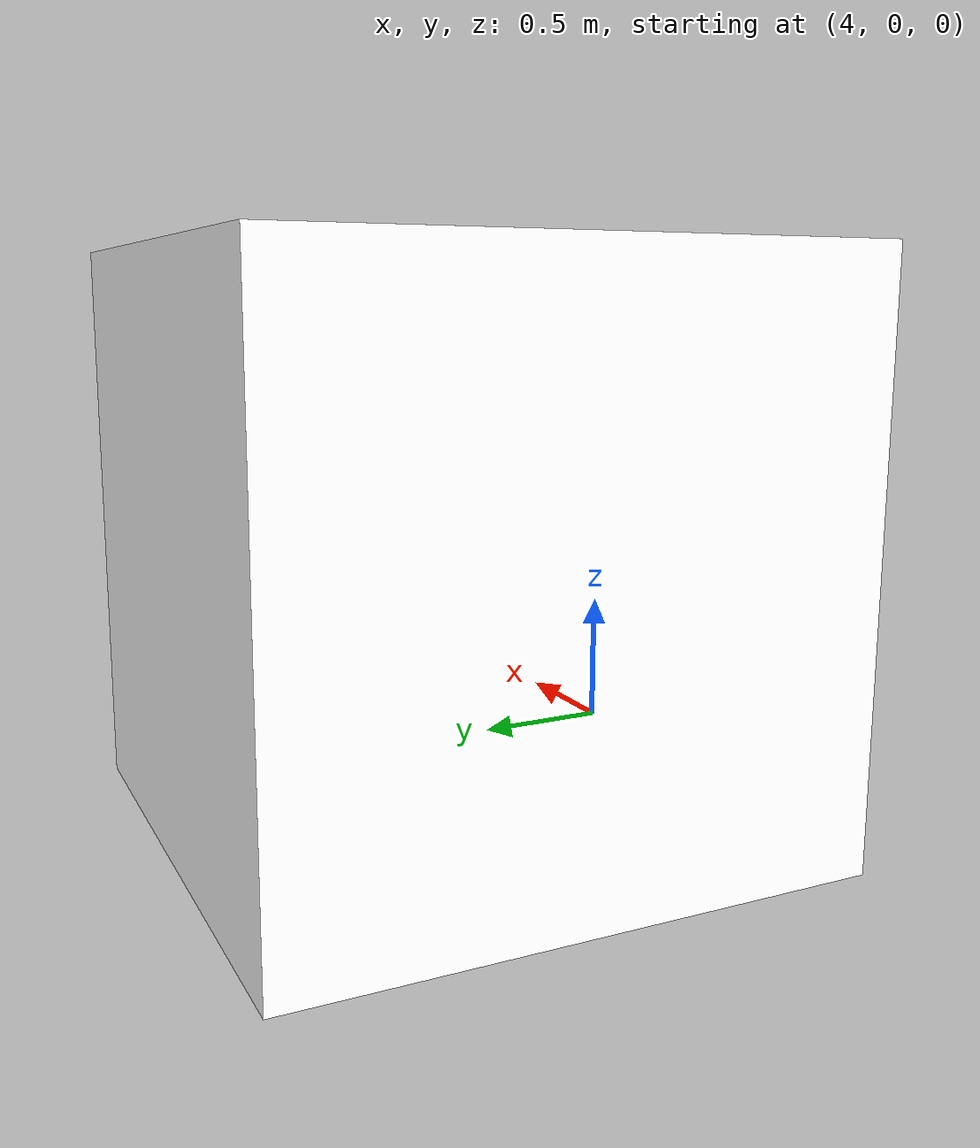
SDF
<?xml version='1.0'?>
<sdf version='1.6'>
  <model name='qr_coder_planta'>
    <link name='Wall_22'>
      <collision name='Wall_22_Collision'>
        <geometry>
          <box>
            <size>3 3 3</size>
          </box>
        </geometry>
        <pose frame=''>0 0 0.5 0 -0 0</pose>
      </collision>
      <visual name='Wall_22_Visual'>
        <pose frame=''>0 0 0.5 0 -0 0</pose>
        <geometry>
          <box>
            <size>3 3 3</size>
          </box>
        </geometry>
        <material>
          <script>
	    <uri>model://qr_coder_planta/materials/scripts</uri>
            <uri>model://qr_coder_planta/materials/textures</uri>
            <name>course/Image</name>
          </script>
          <ambient>1 1 1 1</ambient>
        </material>
      </visual>
      <pose frame=''>5.425 0 0 0 0 15.708</pose>
    </link>

    <static>1</static>
  </model>
</sdf>
